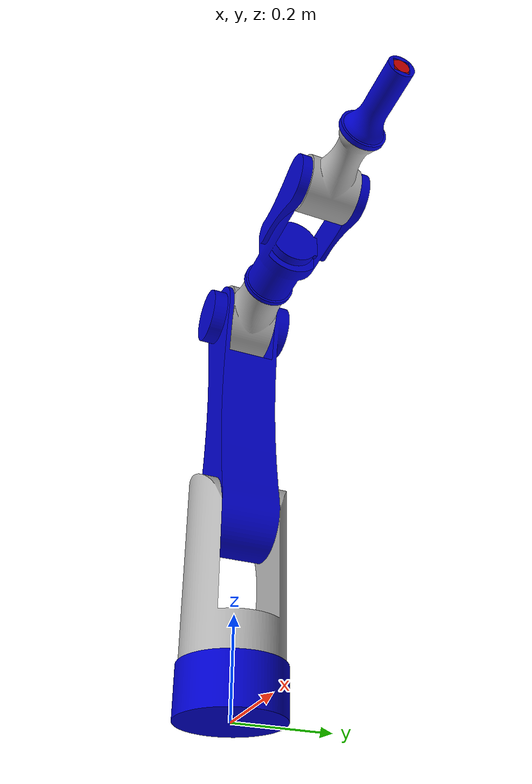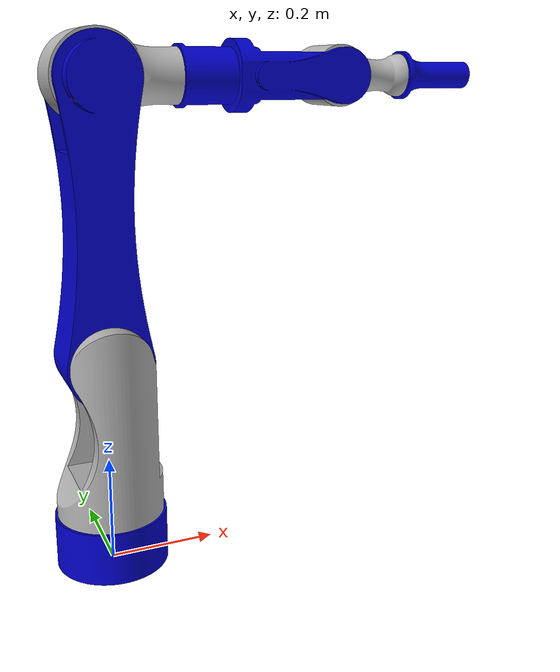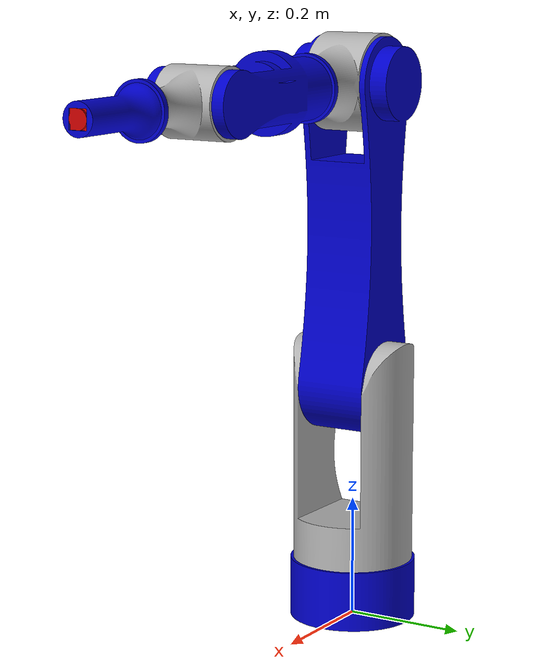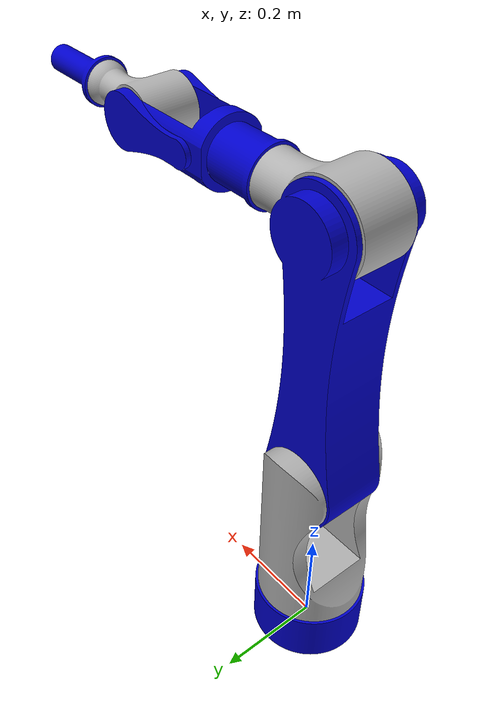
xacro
<?xml version="1.0" ?>
<robot name="project_arm" xmlns:xacro="http://www.ros.org/wiki/xacro">

<xacro:include filename="$(find project_arm_description)/urdf/materials.xacro" />
<xacro:include filename="$(find project_arm_description)/urdf/project_arm.trans" />
<xacro:include filename="$(find project_arm_description)/urdf/project_arm.gazebo" />

<link name="world"/>
  <joint name="world_joint" type="fixed">
    <parent link="world"/>
    <child link="base_link"/>
    <origin xyz="0 0 0" rpy="0 0 0"/>
  </joint>

<link name="base_link">
  <inertial>
    <origin xyz="-2.0655600803110916e-17 -4.131120160622183e-17 0.051086956521739134" rpy="0 0 0"/>
    <mass value="28.14486099507207"/>
    <inertia ixx="0.101403" iyy="0.101403" izz="0.152701" ixy="-0.0" iyz="-0.0" ixz="-0.0"/>
  </inertial>
  <visual>
    <origin xyz="0 0 0" rpy="0 0 0"/>
    <geometry>
      <mesh filename="package://project_arm_description/meshes/base_link.stl" scale="0.001 0.001 0.001"/>
    </geometry>
    <material name="blue"/>
  </visual>
  <collision>
    <origin xyz="0 0 0" rpy="0 0 0"/>
    <geometry>
      <mesh filename="package://project_arm_description/meshes/base_link.stl" scale="0.001 0.001 0.001"/>
    </geometry>
  </collision>
</link>

<link name="link_1_1">
  <inertial>
    <origin xyz="0.00386503222955484 9.679350306559669e-08 0.12786907929728872" rpy="0 0 0"/>
    <mass value="35.62909759848501"/>
    <inertia ixx="0.5863" iyy="0.492833" izz="0.219323" ixy="0.0" iyz="-0.0" ixz="-0.001059"/>
  </inertial>
  <visual>
    <origin xyz="-0.0 -0.0 -0.1" rpy="0 0 0"/>
    <geometry>
      <mesh filename="package://project_arm_description/meshes/link_1_1.stl" scale="0.001 0.001 0.001"/>
    </geometry>
    <material name="silver"/>
  </visual>
  <collision>
    <origin xyz="-0.0 -0.0 -0.1" rpy="0 0 0"/>
    <geometry>
      <mesh filename="package://project_arm_description/meshes/link_1_1.stl" scale="0.001 0.001 0.001"/>
    </geometry>
  </collision>
</link>

<link name="link_2_1">
  <inertial>
    <origin xyz="3.62961838471089e-06 0.06999999999999999 0.18402946055049396" rpy="0 0 0"/>
    <mass value="61.88069383495381"/>
    <inertia ixx="1.999815" iyy="1.968216" izz="0.186912" ixy="-0.0" iyz="-0.0" ixz="6e-06"/>
  </inertial>
  <visual>
    <origin xyz="-0.0 0.07 -0.4" rpy="0 0 0"/>
    <geometry>
      <mesh filename="package://project_arm_description/meshes/link_2_1.stl" scale="0.001 0.001 0.001"/>
    </geometry>
    <material name="blue"/>
  </visual>
  <collision>
    <origin xyz="-0.0 0.07 -0.4" rpy="0 0 0"/>
    <geometry>
      <mesh filename="package://project_arm_description/meshes/link_2_1.stl" scale="0.001 0.001 0.001"/>
    </geometry>
  </collision>
</link>

<link name="link_3_1">
  <inertial>
    <origin xyz="0.023515915121691596 0.060000000443758965 -1.2755581924039916e-08" rpy="0 0 0"/>
    <mass value="20.817814940876815"/>
    <inertia ixx="0.045875" iyy="0.099243" izz="0.087409" ixy="0.0" iyz="-0.0" ixz="0.0"/>
  </inertial>
  <visual>
    <origin xyz="0.0 0.06 -0.9" rpy="0 0 0"/>
    <geometry>
      <mesh filename="package://project_arm_description/meshes/link_3_1.stl" scale="0.001 0.001 0.001"/>
    </geometry>
    <material name="silver"/>
  </visual>
  <collision>
    <origin xyz="0.0 0.06 -0.9" rpy="0 0 0"/>
    <geometry>
      <mesh filename="package://project_arm_description/meshes/link_3_1.stl" scale="0.001 0.001 0.001"/>
    </geometry>
  </collision>
</link>

<link name="link_4_1">
  <inertial>
    <origin xyz="0.14579639880643086 4.781648560622813e-08 -4.1460917521440876e-07" rpy="0 0 0"/>
    <mass value="15.109308946328982"/>
    <inertia ixx="0.036295" iyy="0.158702" izz="0.173859" ixy="-0.0" iyz="0.0" ixz="1e-06"/>
  </inertial>
  <visual>
    <origin xyz="-0.14 0.0 -0.9" rpy="0 0 0"/>
    <geometry>
      <mesh filename="package://project_arm_description/meshes/link_4_1.stl" scale="0.001 0.001 0.001"/>
    </geometry>
    <material name="blue"/>
  </visual>
  <collision>
    <origin xyz="-0.14 0.0 -0.9" rpy="0 0 0"/>
    <geometry>
      <mesh filename="package://project_arm_description/meshes/link_4_1.stl" scale="0.001 0.001 0.001"/>
    </geometry>
  </collision>
</link>

<link name="link_5_1">
  <inertial>
    <origin xyz="0.025858948215740363 0.04000001716221553 -5.351775811401893e-08" rpy="0 0 0"/>
    <mass value="9.856273770853337"/>
    <inertia ixx="0.012972" iyy="0.033281" izz="0.033173" ixy="-0.0" iyz="-0.0" ixz="0.0"/>
  </inertial>
  <visual>
    <origin xyz="-0.45 0.04 -0.9" rpy="0 0 0"/>
    <geometry>
      <mesh filename="package://project_arm_description/meshes/link_5_1.stl" scale="0.001 0.001 0.001"/>
    </geometry>
    <material name="silver"/>
  </visual>
  <collision>
    <origin xyz="-0.45 0.04 -0.9" rpy="0 0 0"/>
    <geometry>
      <mesh filename="package://project_arm_description/meshes/link_5_1.stl" scale="0.001 0.001 0.001"/>
    </geometry>
  </collision>
</link>

<link name="link_6_1">
  <inertial>
    <origin xyz="0.055503279236654435 0.0 1.1102230246251565e-16" rpy="0 0 0"/>
    <mass value="2.467650399276117"/>
    <inertia ixx="0.001433" iyy="0.00564" izz="0.00564" ixy="0.0" iyz="0.0" ixz="0.0"/>
  </inertial>
  <visual>
    <origin xyz="-0.59 -0.0 -0.9" rpy="0 0 0"/>
    <geometry>
      <mesh filename="package://project_arm_description/meshes/link_6_1.stl" scale="0.001 0.001 0.001"/>
    </geometry>
    <material name="blue"/>
  </visual>
  <collision>
    <origin xyz="-0.59 -0.0 -0.9" rpy="0 0 0"/>
    <geometry>
      <mesh filename="package://project_arm_description/meshes/link_6_1.stl" scale="0.001 0.001 0.001"/>
    </geometry>
  </collision>
</link>

<link name="link_7_1">
  <inertial>
    <origin xyz="0.04914582948025081 -0.00024072529393794642 -8.731193212874189e-09" rpy="0 0 0"/>
    <mass value="0.26287558307060616"/>
    <inertia ixx="4.9e-05" iyy="0.000308" izz="0.000308" ixy="0.0" iyz="-0.0" ixz="0.0"/>
  </inertial>
  <visual>
    <origin xyz="-0.65 -0.0 -0.9" rpy="0 0 0"/>
    <geometry>
      <mesh filename="package://project_arm_description/meshes/link_7_1.stl" scale="0.001 0.001 0.001"/>
    </geometry>
    <material name="red"/>
  </visual>
  <collision>
    <origin xyz="-0.65 -0.0 -0.9" rpy="0 0 0"/>
    <geometry>
      <mesh filename="package://project_arm_description/meshes/link_7_1.stl" scale="0.001 0.001 0.001"/>
    </geometry>
  </collision>
</link>

<joint name="joint_1" type="revolute">
  <origin xyz="0.0 0.0 0.1" rpy="0 0 0"/>
  <parent link="base_link"/>
  <child link="link_1_1"/>
  <axis xyz="0.0 0.0 1.0"/>
  <limit upper="3.141593" lower="0.0" effort="1000" velocity="10"/>
</joint>

<joint name="joint_2" type="revolute">
  <origin xyz="0.0 -0.07 0.3" rpy="0 0 0"/>
  <parent link="link_1_1"/>
  <child link="link_2_1"/>
  <axis xyz="0.0 1.0 0.0"/>
  <limit upper="1.570796" lower="-1.570796" effort="1000" velocity="10"/>
</joint>

<joint name="joint_3" type="revolute">
  <origin xyz="-0.0 0.01 0.5" rpy="0 0 0"/>
  <parent link="link_2_1"/>
  <child link="link_3_1"/>
  <axis xyz="0.0 1.0 0.0"/>
  <limit upper="0.785398" lower="-3.926991" effort="1000" velocity="10"/>
</joint>

<joint name="joint_4" type="revolute">
  <origin xyz="0.14 0.06 0.0" rpy="0 0 0"/>
  <parent link="link_3_1"/>
  <child link="link_4_1"/>
  <axis xyz="1.0 0.0 0.0"/>
  <limit upper="3.141593" lower="0.0" effort="1000" velocity="10"/>
</joint>

<joint name="joint_5" type="revolute">
  <origin xyz="0.31 -0.04 0.0" rpy="0 0 0"/>
  <parent link="link_4_1"/>
  <child link="link_5_1"/>
  <axis xyz="0.0 1.0 0.0"/>
  <limit upper="2.356194" lower="-2.356194" effort="1000" velocity="10"/>
</joint>

<joint name="joint_6" type="revolute">
  <origin xyz="0.14 0.04 0.0" rpy="0 0 0"/>
  <parent link="link_5_1"/>
  <child link="link_6_1"/>
  <axis xyz="1.0 0.0 0.0"/>
  <limit upper="6.283185" lower="0.0" effort="1000" velocity="10"/>
</joint>

<joint name="joint_7" type="prismatic">
  <origin xyz="0.06 0.0 0.0" rpy="0 0 0"/>
  <parent link="link_6_1"/>
  <child link="link_7_1"/>
  <axis xyz="1.0 0.0 0.0"/>
  <limit upper="0.05" lower="0.0" effort="1000" velocity="10"/>
</joint>

</robot>

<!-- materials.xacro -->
<robot name="project_arm" xmlns:xacro="http://www.ros.org/wiki/xacro" >

<material name="silver">
  <color rgba="0.700 0.700 0.700 1.000"/>
</material>

  <material name="black">
    <color rgba="0.0 0.0 0.0 1.0"/>
  </material>

  <material name="blue">
    <color rgba="0.0 0.0 0.8 1.0"/>
  </material>

  <material name="green">
    <color rgba="0.0 1.0 0.0 1.0"/>
  </material>

  <material name="grey">
    <color rgba="0.2 0.2 0.2 1.0"/>
  </material>

  <material name="orange">
    <color rgba="${255/255} ${108/255} ${10/255} 1.0"/>
  </material>

  <material name="brown">
    <color rgba="${222/255} ${207/255} ${195/255} 1.0"/>
  </material>

  <material name="red">
    <color rgba="0.8 0.0 0.0 1.0"/>
  </material>

  <material name="white">
    <color rgba="1.0 1.0 1.0 1.0"/>
  </material>

</robot>

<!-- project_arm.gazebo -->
<robot name="project_arm" xmlns:xacro="http://www.ros.org/wiki/xacro" >

<xacro:property name="Silver" value="Gazebo/Silver" />
<xacro:property name="Blue" value="Gazebo/Blue" />
<xacro:property name="Red" value="Gazebo/Red" />

<gazebo>
  <plugin name="gazebo_ros_control" filename="libgazebo_ros_control.so">
    <robotNamespace>/project_arm</robotNamespace>
  </plugin>
</gazebo>
<gazebo reference="base_link">
  <material>${Blue}</material>
  <mu1>0.2</mu1>
  <mu2>0.2</mu2>
  <selfCollide>true</selfCollide>
  <gravity>true</gravity>
</gazebo>

<gazebo reference="link_1_1">
  <material>${Silver}</material>
  <mu1>0.2</mu1>
  <mu2>0.2</mu2>
  <selfCollide>true</selfCollide>
</gazebo>

<gazebo reference="link_2_1">
  <material>${Blue}</material>
  <mu1>0.2</mu1>
  <mu2>0.2</mu2>
  <selfCollide>true</selfCollide>
</gazebo>

<gazebo reference="link_3_1">
  <material>${Silver}</material>
  <mu1>0.2</mu1>
  <mu2>0.2</mu2>
  <selfCollide>true</selfCollide>
</gazebo>

<gazebo reference="link_4_1">
  <material>${Blue}</material>
  <mu1>0.2</mu1>
  <mu2>0.2</mu2>
  <selfCollide>true</selfCollide>
</gazebo>

<gazebo reference="link_5_1">
  <material>${Silver}</material>
  <mu1>0.2</mu1>
  <mu2>0.2</mu2>
  <selfCollide>true</selfCollide>
</gazebo>

<gazebo reference="link_6_1">
  <material>${Blue}</material>
  <mu1>0.2</mu1>
  <mu2>0.2</mu2>
  <selfCollide>true</selfCollide>
</gazebo>

<gazebo reference="link_7_1">
  <material>${Red}</material>
  <mu1>0.2</mu1>
  <mu2>0.2</mu2>
  <selfCollide>true</selfCollide>
</gazebo>

</robot>
